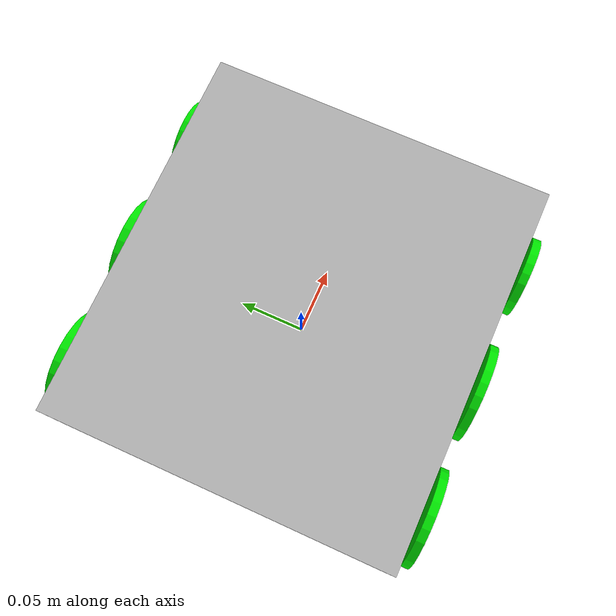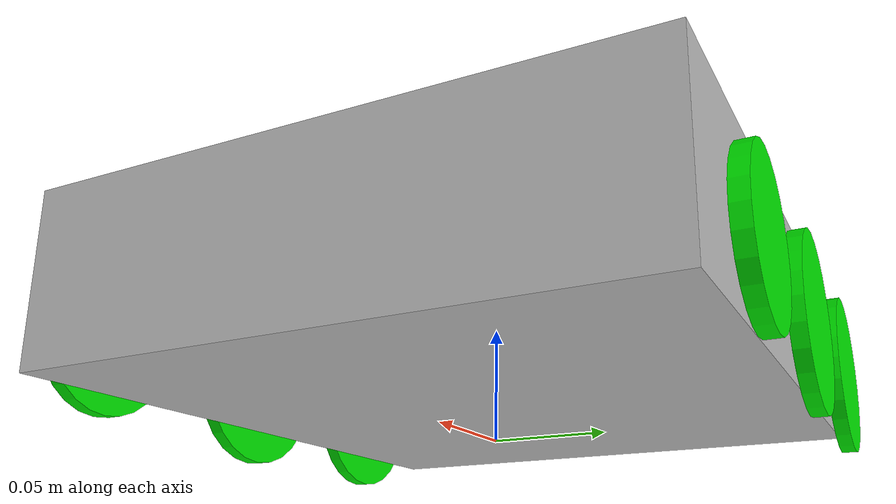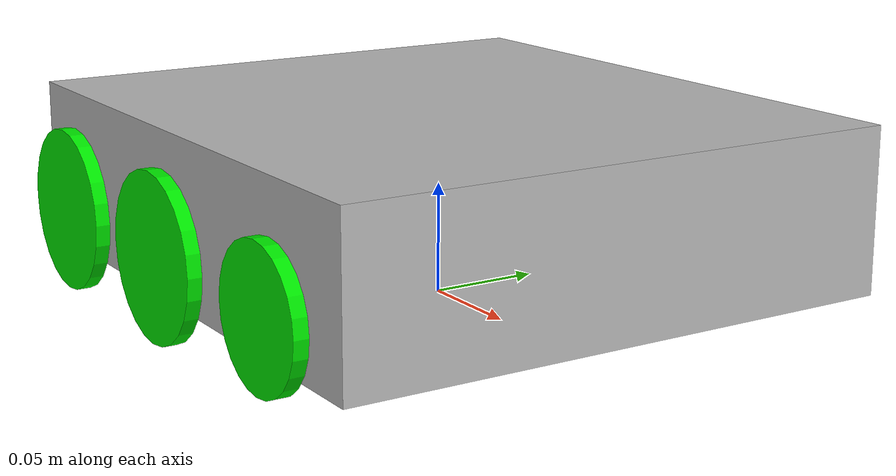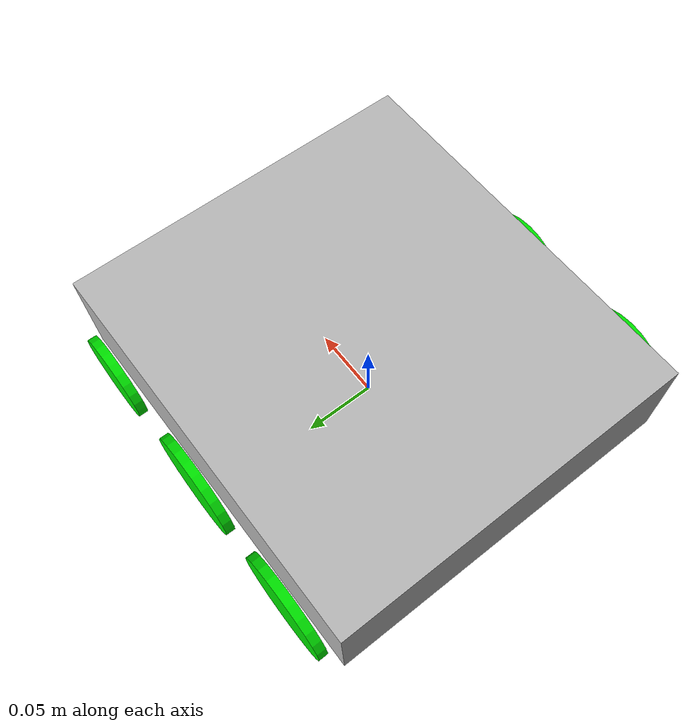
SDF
<?xml version='1.0'?>
<sdf version='1.4'>
  <model name="six_wheel_robot">
    <static>false</static>

    <plugin name="robot_control" filename="libsix_wheel_robot_drivetrain.so"/>

    <link name='chassis'>
      <pose>0 0 .05 0 0 0</pose>
      <inertial>
        <mass>1.5</mass>
        <pose>-0.05 0 0 0 0 0</pose>
        <inertia>
          <ixx>20</ixx>
          <ixy>0</ixy>
          <ixz>0</ixz>
          <iyy>20</iyy>
          <iyz>0</iyz>
          <izz>0.05</izz>
        </inertia>
      </inertial>

      <collision name='collision'>
        <geometry>
          <box>
            <size>.2794 .254 .073</size>
          </box>
        </geometry>
      </collision>

      <visual name='visual'>
        <geometry>
          <box>
            <size>.2794 .254 .073</size>
          </box>
        </geometry>
      </visual>
    </link>

    <!-- Left Wheels -->
    <!-- Back Left -->
    <link name="left_back_wheel">
      <pose>-0.095 0.135 0.036 0 1.5707 1.5707</pose>
      <inertial>
        <mass>0.028</mass>
        <inertia>
          <ixx>0.01</ixx>
          <ixy>0</ixy>
          <ixz>0</ixz>
          <iyy>0.01</iyy>
          <iyz>0</iyz>
          <izz>0.001</izz>
        </inertia>
      </inertial>
      <collision name="collision">
        <geometry>
          <cylinder>
            <radius>.0365125</radius>
            <length>.00635</length>
          </cylinder>
        </geometry>
      </collision>
      <visual name="visual">
        <geometry>
          <cylinder>
            <radius>.0365125</radius>
            <length>.00635</length>
          </cylinder>
        </geometry>

        <!-- Color -->
        <material> <!-- Wheel material -->
          <ambient>0 0.9 0 1</ambient>
          <diffuse>0 0.9 0 1</diffuse>
          <specular>0 0 0 0</specular>
          <emissive>0 0 0 1</emissive>
        </material>
      </visual>
    </link>

    <joint type="revolute" name="left_back_wheel_hinge">
      <pose>0 0 -0.03 0 0 0</pose>
      <child>left_back_wheel</child>
      <parent>chassis</parent>
      <axis>
        <xyz>0 1 0</xyz>
      </axis>
    </joint>

    <!-- Center Left -->
    <link name="left_center_wheel">
      <pose>0 0.135 0.036 0 1.5707 1.5707</pose>
      <inertial>
        <mass>0.028</mass>
        <inertia>
          <ixx>0.01</ixx>
          <ixy>0</ixy>
          <ixz>0</ixz>
          <iyy>0.01</iyy>
          <iyz>0</iyz>
          <izz>0.001</izz>
        </inertia>
      </inertial>
      <collision name="collision">
        <geometry>
          <cylinder>
            <radius>.0365125</radius>
            <length>.00635</length>
          </cylinder>
        </geometry>
      </collision>
      <visual name="visual">
        <geometry>
          <cylinder>
            <radius>.0365125</radius>
            <length>.00635</length>
          </cylinder>
        </geometry>

        <!-- Color -->
        <material> <!-- Wheel material -->
          <ambient>0 0.9 0 1</ambient>
          <diffuse>0 0.9 0 1</diffuse>
          <specular>0 0 0 0</specular>
          <emissive>0 0 0 1</emissive>
        </material>
      </visual>
    </link>

    <joint type="revolute" name="left_center_wheel_hinge">
      <pose>0 0 -0.03 0 0 0</pose>
      <child>left_center_wheel</child>
      <parent>chassis</parent>
      <axis>
        <xyz>0 1 0</xyz>
      </axis>
    </joint>

    <!-- Front Left -->
    <link name="left_front_wheel">
      <pose>0.095 0.135 0.036 0 1.5707 1.5707</pose>
      <inertial>
        <mass>0.028</mass>
        <inertia>
          <ixx>0.01</ixx>
          <ixy>0</ixy>
          <ixz>0</ixz>
          <iyy>0.01</iyy>
          <iyz>0</iyz>
          <izz>0.001</izz>
        </inertia>
      </inertial>
      <collision name="collision">
        <geometry>
          <cylinder>
            <radius>.03</radius>
            <length>.00635</length>
          </cylinder>
        </geometry>
      </collision>
      <visual name="visual">
        <geometry>
          <cylinder>
            <radius>.03</radius>
            <length>.00635</length>
          </cylinder>
        </geometry>

        <!-- Color -->
        <material> <!-- Wheel material -->
          <ambient>0 0.9 0 1</ambient>
          <diffuse>0 0.9 0 1</diffuse>
          <specular>0 0 0 0</specular>
          <emissive>0 0 0 1</emissive>
        </material>
      </visual>
    </link>

    <joint type="revolute" name="left_front_wheel_hinge">
      <pose>0 0 -0.03 0 0 0</pose>
      <child>left_front_wheel</child>
      <parent>chassis</parent>
      <axis>
        <xyz>0 1 0</xyz>
      </axis>
    </joint>

    <!-- Right Wheels -->
    <!-- Back Right -->
    <link name="right_back_wheel">
      <pose>-0.095 -0.135 0.036 0 1.5707 1.5707</pose>
      <inertial>
        <mass>0.028</mass>
        <inertia>
          <ixx>0.01</ixx>
          <ixy>0</ixy>
          <ixz>0</ixz>
          <iyy>0.01</iyy>
          <iyz>0</iyz>
          <izz>0.001</izz>
        </inertia>
      </inertial>
      <collision name="collision">
        <geometry>
          <cylinder>
            <radius>.0365125</radius>
            <length>.00635</length>
          </cylinder>
        </geometry>
      </collision>
      <visual name="visual">
        <geometry>
          <cylinder>
            <radius>.0365125</radius>
            <length>.00635</length>
          </cylinder>
        </geometry>

        <!-- Color -->
        <material> <!-- Wheel material -->
          <ambient>0 0.9 0 1</ambient>
          <diffuse>0 0.9 0 1</diffuse>
          <specular>0 0 0 0</specular>
          <emissive>0 0 0 1</emissive>
        </material>
      </visual>
    </link>

    <joint type="revolute" name="right_back_wheel_hinge">
      <pose>0 0 0.03 0 0 0</pose>
      <child>right_back_wheel</child>
      <parent>chassis</parent>
      <axis>
        <xyz>0 1 0</xyz>
      </axis>
    </joint>

    <!-- Center Right -->
    <link name="right_center_wheel">
      <pose>0 -0.135 0.036 0 1.5707 1.5707</pose>
      <inertial>
        <mass>0.028</mass>
        <inertia>
          <ixx>0.01</ixx>
          <ixy>0</ixy>
          <ixz>0</ixz>
          <iyy>0.01</iyy>
          <iyz>0</iyz>
          <izz>0.001</izz>
        </inertia>
      </inertial>
      <collision name="collision">
        <geometry>
          <cylinder>
            <radius>.0365125</radius>
            <length>.00635</length>
          </cylinder>
        </geometry>
      </collision>
      <visual name="visual">
        <geometry>
          <cylinder>
            <radius>.0365125</radius>
            <length>.00635</length>
          </cylinder>
        </geometry>

        <!-- Color -->
        <material> <!-- Wheel material -->
          <ambient>0 0.9 0 1</ambient>
          <diffuse>0 0.9 0 1</diffuse>
          <specular>0 0 0 0</specular>
          <emissive>0 0 0 1</emissive>
        </material>
      </visual>
    </link>

    <joint type="revolute" name="right_center_wheel_hinge">
      <pose>0 0 0.03 0 0 0</pose>
      <child>right_center_wheel</child>
      <parent>chassis</parent>
      <axis>
        <xyz>0 1 0</xyz>
      </axis>
    </joint>

    <!-- Front Right -->
    <link name="right_front_wheel">
      <pose>0.095 -0.135 0.036 0 1.5707 1.5707</pose>
      <inertial>
        <mass>0.028</mass>
        <inertia>
          <ixx>0.01</ixx>
          <ixy>0</ixy>
          <ixz>0</ixz>
          <iyy>0.01</iyy>
          <iyz>0</iyz>
          <izz>0.001</izz>
        </inertia>
      </inertial>
      <collision name="collision">
        <geometry>
          <cylinder>
            <radius>.03</radius>
            <length>.00635</length>
          </cylinder>
        </geometry>
      </collision>
      <visual name="visual">
        <geometry>
          <cylinder>
            <radius>.03</radius>
            <length>.00635</length>
          </cylinder>
        </geometry>

        <!-- Color -->
        <material> <!-- Wheel material -->
          <ambient>0 0.9 0 1</ambient>
          <diffuse>0 0.9 0 1</diffuse>
          <specular>0 0 0 0</specular>
          <emissive>0 0 0 1</emissive>
        </material>
      </visual>
    </link>

    <joint type="revolute" name="right_front_wheel_hinge">
      <pose>0 0 0.03 0 0 0</pose>
      <child>right_front_wheel</child>
      <parent>chassis</parent>
      <axis>
        <xyz>0 1 0</xyz>
      </axis>
    </joint>

  </model>
</sdf>
